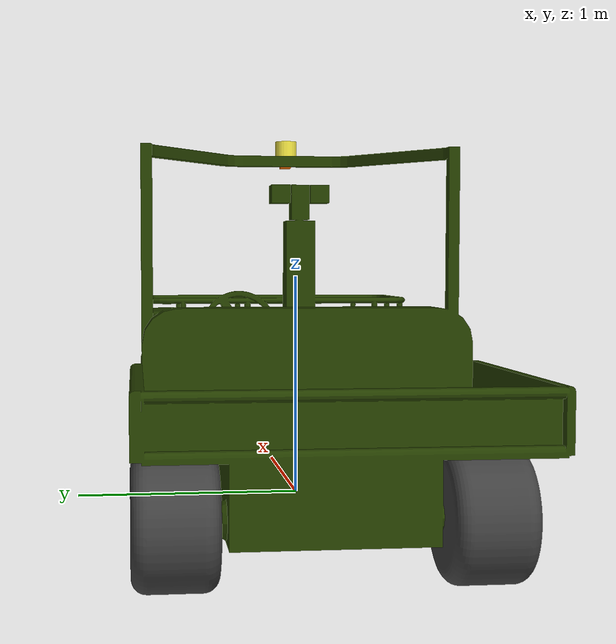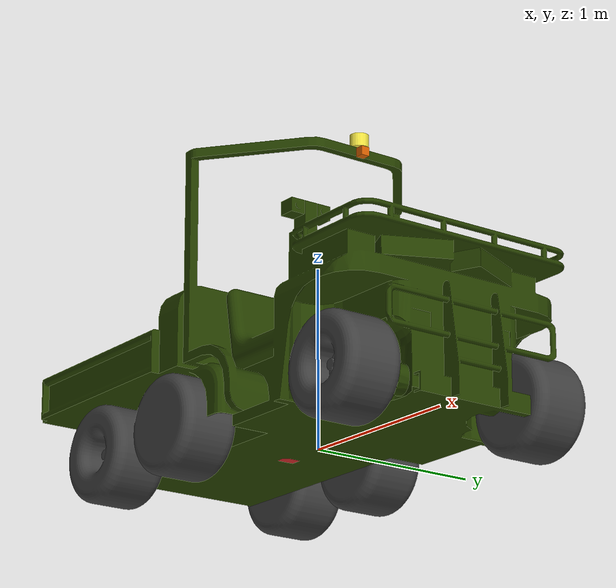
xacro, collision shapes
<?xml version="1.0" ?>
<!-- |    This document was autogenerated by xacro from rgator_model.urdf              | -->
<!-- |    EDITING THIS FILE BY HAND IS NOT RECOMMENDED                                 | -->
<robot name="rgator_model" xmlns:xacro="http://www.ros.org/wiki/xacro">
    <xacro:include filename="$(find rgator_model)/urdf/rgator.gazebo" />
    <xacro:include filename="$(find rgator_model)/urdf/macros.xacro" />

    <xacro:arg name="velodyne_points" default="false"/>
    <xacro:arg name="laser_points" default="false"/>

    <xacro:property name="velodyne_points" value="$(arg velodyne_points)"/>
    <xacro:property name="laser_points" value="$(arg laser_points)"/>
    <xacro:include filename="$(find velodyne_description)/urdf/VLP-16.urdf.xacro"/>

    <link name="base_footprint">
        </link>

    <link name="base_link">
        <inertial>
        <origin rpy="0 0 0" xyz="-0.037681 0.0005416 0.38334"/>
        <mass value="1146.5"/>
        <inertia
            ixx="205.702789313137"
            ixy="-0.20742120719075"
            ixz="-9.13771633467953"
            iyy="482.020173559149"
            iyz="0.0517191981605489"
            izz="482.316418870047" />
        </inertial>

        <visual>
        <origin rpy="0 0 0" xyz="0 0 0"/>
        <geometry>
            <mesh filename="package://rgator_model/meshes/base_link.STL"/>
        </geometry>
        <material name="">
            <color rgba="0.1451 0.24706 0 1"/>
        </material>
        </visual>
        <collision>
        <origin rpy="0 0 0" xyz="0 0 0"/>
        <geometry>
            <mesh filename="package://rgator_model/meshes/base_link.STL"/>
        </geometry>
        </collision>
    </link>

        <joint name="base_link" type="fixed">
            <origin xyz="0 0 0" rpy="0 0 0"/>
            <parent link="base_footprint"/>
            <child link="base_link"/>
        </joint>

    <!-- ***************************************** Wheel settings below ****************************************** -->

    <!-- Front left wheel -->
    <link name="left_steering_hinge_link">
        <inertial>
        <mass value="1"/>
        <origin xyz="0 0 0" rpy="0 0 0"/>
        <inertia ixx="0.004" ixy="0.0" ixz="0.0" iyy="0.004" iyz="0.0" izz="0.004"/>
        </inertial>
    </link>

    <joint name="left_steering_hinge_joint" type="revolute">
        <parent link="base_link"/>
        <child link="left_steering_hinge_link"/>
        <origin xyz="0.998679994403652 0.61 0.0899999999999999" rpy="0 0 0"/>
        <axis xyz="0 0 1" />
        <limit lower="-0.61" upper="0.61" effort="1000" velocity="0.5"/>
    </joint>

    <link name="front_left_wheel_link">
        <inertial>
            <origin rpy="0 0 0" xyz="4.44089209850063E-16 -0.0223230092959477 0"/>
            <mass value="68.0202335873534"/>

            <inertia ixx="0.58631238" ixy="0.0" ixz="0.0" iyy="0.33552910" iyz="0.0" izz="0.33552910"/>
        </inertial>
        <visual>
        <origin rpy="0 0 0" xyz="0 0 0"/>
        <geometry>
            <mesh filename="package://rgator_model/meshes/front_left_wheel_link.STL"/>
        </geometry>
        <material name="">
            <color rgba="0.250980392156863 0.250980392156863 0.250980392156863 1"/>
        </material>
        </visual>
        <collision>
        <origin rpy="0 0 0" xyz="0 0 0"/>
        <geometry>
            <mesh filename="package://rgator_model/meshes/front_left_wheel_link.STL"/>
        </geometry>
        </collision>
    </link>
    <joint name="front_left_wheel_joint" type="continuous">
        <origin rpy="0 0 0" xyz="0 0 0"/>
        <parent link="left_steering_hinge_link"/>
        <child link="front_left_wheel_link"/>
        <axis xyz="0 1 0"/>
        <limit effort="1000" velocity="100.0"/>
    </joint>

    <!-- Front right wheel -->
    <link name="right_steering_hinge_link">
        <inertial>
        <mass value="1"/>
        <origin xyz="0 0 0" rpy="0 0 0"/>
        <inertia ixx="0.004" ixy="0.0" ixz="0.0" iyy="0.004" iyz="0.0" izz="0.004"/>
        </inertial>
    </link>

    <joint name="right_steering_hinge_joint" type="revolute">
        <parent link="base_link"/>
        <child link="right_steering_hinge_link"/>
        <origin xyz="0.998679994403652 -0.61 0.0899999999999999" rpy="0 0 0"/>
        <axis xyz="0 0 1" />
        <limit lower="-0.61" upper="0.61" effort="1000" velocity="0.5"/>
    </joint>

    <link name="front_right_wheel_link">
        <inertial>
        <origin rpy="0 0 0" xyz="0 0.0223230092959477 0"/>
        <mass value="68.0202335873534"/>
        <inertia ixx="0.58631238" ixy="0.0" ixz="0.0" iyy="0.33552910" iyz="0.0" izz="0.33552910"/>
        </inertial>
        <visual>
        <origin rpy="0 0 0" xyz="0 0 0"/>
        <geometry>
            <mesh filename="package://rgator_model/meshes/front_right_wheel_link.STL"/>
        </geometry>
        <material name="">
            <color rgba="0.250980392156863 0.250980392156863 0.250980392156863 1"/>
        </material>
        </visual>
        <collision>
        <origin rpy="0 0 0" xyz="0 0 0"/>
        <geometry>
            <mesh filename="package://rgator_model/meshes/front_right_wheel_link.STL"/>
        </geometry>
        </collision>
    </link>
    <joint name="front_right_wheel_joint" type="continuous">
        <origin rpy="0 0 0" xyz="0 0 0"/>
        <parent link="right_steering_hinge_link"/>
        <child link="front_right_wheel_link"/>
        <axis xyz="0 1 0"/>
        <limit effort="1000" velocity="100.0"/>
    </joint>

    <!-- Middle left wheel -->
    <link name="middle_left_wheel_link">
        <inertial>
        <origin rpy="0 0 0" xyz="0 -0.0223230092959477 0"/>
        <mass value="68.0202335873534"/>
        <inertia ixx="0.58631238" ixy="0.0" ixz="0.0" iyy="0.33552910" iyz="0.0" izz="0.33552910"/>
        </inertial>
        <visual>
        <origin rpy="0 0 0" xyz="0 0 0"/>
        <geometry>
            <mesh filename="package://rgator_model/meshes/middle_left_wheel_link.STL"/>
        </geometry>
        <material name="">
            <color rgba="0.250980392156863 0.250980392156863 0.250980392156863 1"/>
        </material>
        </visual>
        <collision>
        <origin rpy="0 0 0" xyz="0 0 0"/>
        <geometry>
            <mesh filename="package://rgator_model/meshes/middle_left_wheel_link.STL"/>
        </geometry>
        </collision>
    </link>
    <joint name="middle_left_wheel_joint" type="continuous">
        <origin rpy="0 0 0" xyz="-0.331320005596349 0.61 0.0900000000000012"/>
        <parent link="base_link"/>
        <child link="middle_left_wheel_link"/>
        <axis xyz="0 1 0"/>
        <limit effort="1000" velocity="100.0"/>
    </joint>

    <!-- Middle right wheel -->
    <link name="middle_right_wheel_link">
        <inertial>
        <origin rpy="0 0 0" xyz="0 0.0223230092959477 -4.44089209850063E-16"/>
        <mass value="68.0202335873534"/>
        <inertia ixx="0.58631238" ixy="0.0" ixz="0.0" iyy="0.33552910" iyz="0.0" izz="0.33552910"/>
        </inertial>
        <visual>
        <origin rpy="0 0 0" xyz="0 0 0"/>
        <geometry>
            <mesh filename="package://rgator_model/meshes/middle_right_wheel_link.STL"/>
        </geometry>
        <material name="">
            <color rgba="0.250980392156863 0.250980392156863 0.250980392156863 1"/>
        </material>
        </visual>
        <collision>
        <origin rpy="0 0 0" xyz="0 0 0"/>
        <geometry>
            <mesh filename="package://rgator_model/meshes/middle_right_wheel_link.STL"/>
        </geometry>
        </collision>
    </link>
    <joint name="middle_right_wheel_joint" type="continuous">
        <origin rpy="0 0 0" xyz="-0.331320005596348 -0.61 0.0899999999999994"/>
        <parent link="base_link"/>
        <child link="middle_right_wheel_link"/>
        <axis xyz="0 1 0"/>
        <limit effort="1000" velocity="100.0"/>
    </joint>

    <!-- Rear left wheel -->
    <link name="rear_left_wheel_link">
        <inertial>
        <origin rpy="0 0 0" xyz="-1.11022302462516E-16 -0.0223230092959477 -4.44089209850063E-16"/>
        <mass value="68.0202335873534"/>
        <inertia ixx="0.58631238" ixy="0.0" ixz="0.0" iyy="0.33552910" iyz="0.0" izz="0.33552910"/>
        </inertial>
        <visual>
        <origin rpy="0 0 0" xyz="0 0 0"/>
        <geometry>
            <mesh filename="package://rgator_model/meshes/rear_left_wheel_link.STL"/>
        </geometry>
        <material name="">
            <color rgba="0.250980392156863 0.250980392156863 0.250980392156863 1"/>
        </material>
        </visual>
        <collision>
        <origin rpy="0 0 0" xyz="0 0 0"/>
        <geometry>
            <mesh filename="package://rgator_model/meshes/rear_left_wheel_link.STL"/>
        </geometry>
        </collision>
    </link>

    <joint name="rear_left_wheel_joint" type="continuous">
        <origin rpy="0 0 0" xyz="-1.02132000559635 0.61 0.0899999999999999"/>
        <parent link="base_link"/>
        <child link="rear_left_wheel_link"/>
        <axis xyz="0 1 0"/>
        <limit effort="1000" velocity="100.0"/>
    </joint>

    <!-- rear right wheel -->
    <link name="rear_right_wheel_link">
        <inertial>
        <origin rpy="0 0 0" xyz="-1.11022302462516E-16 0.0223230092959477 0"/>
        <mass value="68.0202335873534"/>
        <inertia ixx="0.58631238" ixy="0.0" ixz="0.0" iyy="0.33552910" iyz="0.0" izz="0.33552910"/>
        </inertial>
        <visual>
        <origin rpy="0 0 0" xyz="0 0 0"/>
        <geometry>
            <mesh filename="package://rgator_model/meshes/rear_right_wheel_link.STL"/>
        </geometry>
        <material name="">
            <color rgba="0.250980392156863 0.250980392156863 0.250980392156863 1"/>
        </material>
        </visual>
        <collision>
        <origin rpy="0 0 0" xyz="0 0 0"/>
        <geometry>
            <mesh filename="package://rgator_model/meshes/rear_right_wheel_link.STL"/>
        </geometry>
        </collision>
    </link>
    <joint name="rear_right_wheel_joint" type="continuous">
        <origin rpy="0 0 0" xyz="-1.02132000559635 -0.61 0.0900000000000003"/>
        <parent link="base_link"/>
        <child link="rear_right_wheel_link"/>
        <axis xyz="0 1 0"/>
        <limit effort="1000" velocity="100.0"/>
    </joint>

    <link name="top_rack_link">
        <inertial>
        <mass value="1"/>
        <origin xyz="0 0 0" rpy="0 0 0"/>
        <inertia ixx="0.0" ixy="0.0" ixz="0.0" iyy="0.0" iyz="0.0" izz="0.0"/>
        </inertial>
    </link>

    <joint name="top_rack_joint" type="fixed">
        <origin xyz="0.367 0.0 1.58" rpy="1.5708 0 3.1416" />
        <parent link="base_link" />
        <child link="top_rack_link" />
        <axis xyz="0 0 0" />
    </joint>

    <!-- ******************************************** Transmissions ********************************************* -->

    <xacro:wheel_transmission name="rear_left_wheel" />
    <xacro:wheel_transmission name="rear_right_wheel" />

    <xacro:wheel_transmission name="front_left_wheel" />
    <xacro:wheel_transmission name="front_right_wheel" />

    <xacro:steering_hinge_transmission name="left_steering_hinge" />
    <xacro:steering_hinge_transmission name="right_steering_hinge" />

    <!-- ******************************************** Sensor ********************************************* -->

    <xacro:VLP-16 parent="top_rack_link" name="velodyne" topic="/velodyne_points" hz="10" samples="440" gpu="false">
        <origin xyz="0.0 0.0 0.0" rpy="1.5708 0 3.1416" />
    </xacro:VLP-16>

    <link name="front_single_camera_link">
    <collision>
      <origin xyz="0 0 0" rpy="0 0 0"/>
      <geometry>
        <box size="0.05 0.05 0.05"/>
      </geometry>
    </collision>
    <visual>
      <origin xyz="0 0 0" rpy="0 0 0"/>
      <geometry>
        <box size="0.05 0.05 0.05"/>
      </geometry>
    </visual>
    <inertial>
      <mass value="1e-5" />
      <origin xyz="0 0 0" rpy="0 0 0"/>
      <inertia ixx="1e-6" ixy="0" ixz="0" iyy="1e-6" iyz="0" izz="1e-6" />
    </inertial>
  </link>

  <joint name="gem_front_camera_joint" type="fixed">
    <origin xyz="0.396 0 1.55" rpy="0 0 0"/>
    <parent link="base_link"/>
    <child link="front_single_camera_link"/>
  </joint>

    <!-- IMU -->
  <link name="IMU_link">

    <collision>
      <origin xyz="0 0 0" rpy="0 0 0"/>
      <geometry>
        <box size="0.1 0.1 0.1"/>
      </geometry>
    </collision>

    <visual>
      <origin xyz="0 0 0" rpy="0 0 0"/>
      <geometry>
        <box size="0.1 0.1 0.1"/>
      </geometry>
    </visual>

    <inertial>
      <origin xyz="0 0 0" rpy="0 0 0"/>
      <mass value="1"/>
      <inertia
        ixx="1.0" ixy="0.0" ixz="0.0"
        iyy="1.0" iyz="0.0"
        izz="1.0"/>
    </inertial>

  </link>

  <joint name="IMU_joint" type="fixed">
    <origin xyz="-0.246 0 0.05" rpy="0 0 -1.5708"/>
    <parent link="base_link"/>
    <child link="IMU_link"/>
  </joint>

  <!-- GPS -->
  <link name="GPS_link">
    <collision>
      <origin xyz="0 0 0" rpy="0 0 0"/>
      <geometry>
        <box size="0.1 0.1 0.1"/>
      </geometry>
    </collision>
    <visual>
      <origin xyz="0 0 0" rpy="0 0 0"/>
      <geometry>
        <box size="0.1 0.1 0.1"/>
      </geometry>
    </visual>
    <inertial>
      <origin xyz="0 0 0" rpy="0 0 0"/>
      <mass value="1"/>
      <inertia
        ixx="1.0" ixy="0.0" ixz="0.0"
        iyy="1.0" iyz="0.0"
        izz="1.0"/>
    </inertial>
  </link>

  <joint name="GPS_joint" type="fixed">
    <origin xyz="-0.246 0 0.05" rpy="0 0 0"/>
    <parent link="base_link"/>
    <child link="GPS_link"/>
  </joint>

</robot>

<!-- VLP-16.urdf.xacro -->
<robot xmlns:xacro="http://www.ros.org/wiki/xacro" name="VLP-16">
  <xacro:property name="M_PI" value="3.1415926535897931" />
  <xacro:macro name="VLP-16" params="*origin is_sim:=true parent:=base_link name:=velodyne tf_prefix:='' topic:=/velodyne_points organize_cloud:=false hz:=10 lasers:=16 samples:=1875 collision_range:=0.3 min_range:=0.0 max_range:=100.0 noise:=0.008 min_angle:=-${M_PI} max_angle:=${M_PI} gpu:=false">

    <joint name="${name}_base_mount_joint" type="fixed">
      <xacro:insert_block name="origin" />
      <parent link="${parent}"/>
      <child link="${name}_base_link"/>
    </joint>

    <link name="${name}_base_link">
      <inertial>
        <mass value="0.83"/>
        <origin xyz="0 0 0.03585"/>
        <inertia ixx="${(0.83 * (3.0*0.0516*0.0516 + 0.0717*0.0717)) / 12.0}" ixy="0" ixz="0"
          iyy="${(0.83 * (3.0*0.0516*0.0516 + 0.0717*0.0717)) / 12.0}" iyz="0"
          izz="${0.5 * 0.83 * (0.0516*0.0516)}"/>
      </inertial>
      <visual>
        <geometry>
          <mesh filename="package://velodyne_description/meshes/VLP16_base_1.dae" />
        </geometry>
      </visual>
      <visual>
        <geometry>
          <mesh filename="package://velodyne_description/meshes/VLP16_base_2.dae" />
        </geometry>
      </visual>
      <collision>
        <origin rpy="0 0 0" xyz="0 0 0.03585"/>
        <geometry>
          <cylinder radius="0.0516" length="0.0717"/>
        </geometry>
      </collision>
    </link>

    <joint name="${name}_base_scan_joint" type="fixed" >
      <origin xyz="0 0 0.0377" rpy="0 0 0" />
      <parent link="${name}_base_link" />
      <child link="${name}"/>
    </joint>

    <link name="${name}">
      <inertial>
        <mass value="0.01"/>
        <origin xyz="0 0 0"/>
        <inertia ixx="1e-7" ixy="0" ixz="0" iyy="1e-7" iyz="0" izz="1e-7"/>
      </inertial>
      <visual>
        <origin xyz="0 0 -0.0377" />
        <geometry>
          <mesh filename="package://velodyne_description/meshes/VLP16_scan.dae" />
        </geometry>
      </visual>
      <collision>
        <geometry>
          <sphere radius="0"/>
        </geometry>
      </collision>
    </link>

    <!-- Gazebo requires the velodyne_gazebo_plugins package -->
    <xacro:if value="${is_sim}">
        <gazebo reference="${name}">
            <xacro:if value="${gpu}">
                <sensor type="gpu_ray" name="${name}-VLP16">
                <pose>0 0 0 0 0 0</pose>
                <visualize>false</visualize>
                <update_rate>${hz}</update_rate>
                <ray>
                    <scan>
                    <horizontal>
                        <samples>${samples}</samples>
                        <resolution>1</resolution>
                        <min_angle>${min_angle}</min_angle>
                        <max_angle>${max_angle}</max_angle>
                    </horizontal>
                    <vertical>
                        <samples>${lasers}</samples>
                        <resolution>1</resolution>
                        <min_angle>-${15.0*M_PI/180.0}</min_angle>
                        <max_angle> ${15.0*M_PI/180.0}</max_angle>
                    </vertical>
                    </scan>
                    <range>
                    <min>${collision_range}</min>
                    <max>${max_range+1}</max>
                    <resolution>0.001</resolution>
                    </range>
                    <noise>
                    <type>gaussian</type>
                    <mean>0.0</mean>
                    <stddev>0.0</stddev>
                    </noise>
                </ray>
                <plugin name="gazebo_ros_laser_controller" filename="libgazebo_ros_velodyne_laser.so">
                    <ros>
                    <namespace>/${name}</namespace>
                    <remapping>~/out:=${topic}</remapping>
                    </ros>
                    <tf_prefix>${tf_prefix}</tf_prefix>
                    <frame_name>${name}</frame_name>
                    <organize_cloud>${organize_cloud}</organize_cloud>
                    <min_range>${min_range}</min_range>
                    <max_range>${max_range}</max_range>
                    <gaussian_noise>${noise}</gaussian_noise>
                </plugin>
                </sensor>
            </xacro:if>
            <xacro:unless value="${gpu}">
                <sensor type="ray" name="${name}-VLP16">
                <pose>0 0 0 0 0 0</pose>
                <visualize>false</visualize>
                <update_rate>${hz}</update_rate>
                <ray>
                    <scan>
                    <horizontal>
                        <samples>${samples}</samples>
                        <resolution>1</resolution>
                        <min_angle>${min_angle}</min_angle>
                        <max_angle>${max_angle}</max_angle>
                    </horizontal>
                    <vertical>
                        <samples>${lasers}</samples>
                        <resolution>1</resolution>
                        <min_angle>-${15.0*M_PI/180.0}</min_angle>
                        <max_angle> ${15.0*M_PI/180.0}</max_angle>
                    </vertical>
                    </scan>
                    <range>
                    <min>${collision_range}</min>
                    <max>${max_range+1}</max>
                    <resolution>0.001</resolution>
                    </range>
                    <noise>
                    <type>gaussian</type>
                    <mean>0.0</mean>
                    <stddev>0.0</stddev>
                    </noise>
                </ray>
                <plugin name="gazebo_ros_laser_controller" filename="libgazebo_ros_velodyne_laser.so">
                    <ros>
                    <namespace>/${name}</namespace>
                    <remapping>~/out:=${topic}</remapping>
                    </ros>
                    <tf_prefix>${tf_prefix}</tf_prefix>
                    <frame_name>${name}</frame_name>
                    <organize_cloud>${organize_cloud}</organize_cloud>
                    <min_range>${min_range}</min_range>
                    <max_range>${max_range}</max_range>
                    <gaussian_noise>${noise}</gaussian_noise>
                </plugin>
                </sensor>
            </xacro:unless>
        </gazebo>
    </xacro:if>

  </xacro:macro>
</robot>
